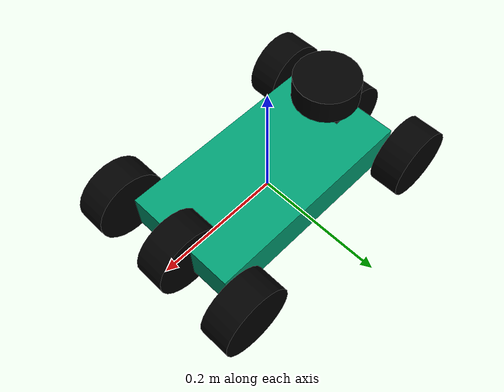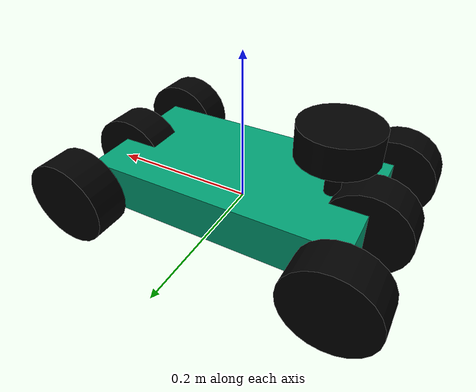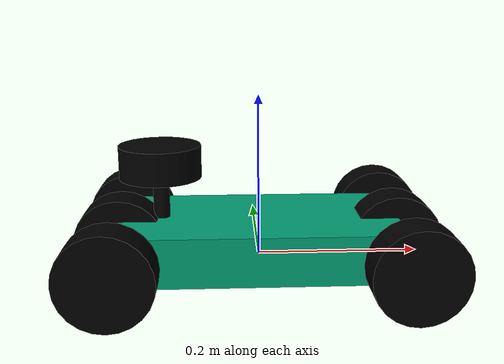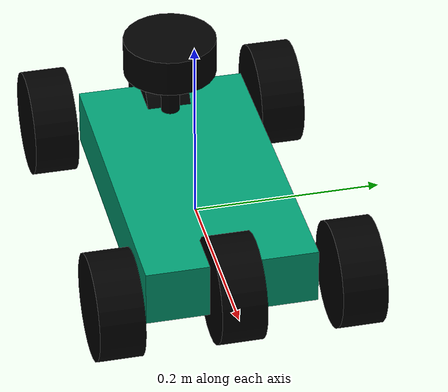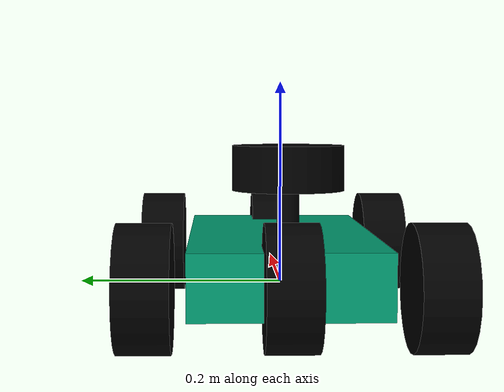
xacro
<?xml version="1.0"?>
<robot xmlns:xacro="http://www.ros.org/wiki/xacro"  name="robot">

    <xacro:arg name="use_ros2_control" default="true"/>
    <xacro:arg name="sim_mode" default="false"/>

    <xacro:include filename="Traxxes_2DOF.xacro" />
    <xacro:include filename="ros2_control_bicycle.xacro" />
    <xacro:include filename="lidar.xacro" />
    <xacro:if value="$(arg sim_mode)">
        <xacro:include filename="camera.xacro" />
        <xacro:include filename="imu.xacro"/>
    </xacro:if>

</robot>

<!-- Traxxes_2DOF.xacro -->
<robot xmlns:xacro="http://www.ros.org/wiki/xacro">

  <xacro:include filename="inertial_macros.xacro" />

  <!-- car geometry -->
  <xacro:arg name="wheel_diameter" default="0.112" />
  <xacro:property name="wheel_radius" value="${$(arg wheel_diameter)/2}" />
  <xacro:property name="wheel_width" value="0.047" />
  <xacro:property name="wheel_friction" value="2.0" />
  <xacro:property name="wheelbase" value="0.3429" />
  <xacro:property name="track_width" value="0.25" />
  <xacro:property name="chassis_width" value="0.18" />
  <xacro:property name="wheel_mass" value="0.1" />
  <xacro:property name="total_mass" value="3.0" />
  <xacro:property name="shock_travel" value="0.09" />
  <xacro:property name="chassis_height" value="0.06" />
  <xacro:property name="chassis_elevation" value="-0.01" />
  <xacro:property name="chassis_mass" value="${total_mass-4*wheel_mass}" />

  <!-- Steering params -->
  <xacro:property name="steering_velocity" value="0.2" />
  <xacro:property name="steering_upper_limit" value="0.6" />
  <xacro:property name="steering_lower_limit" value="-0.6" />
  <xacro:property name="steering_effort" value="1000.0" />

  <!-- Base link -->
  <link name="base_link">
   <visual>
      <geometry>
        <cylinder length="0.001" radius="0.001" />
      </geometry>
      <material name="black">
        <color rgba="0 0 0 1" />
      </material>
    </visual>
    <collision>
      <geometry>
        <cylinder length="0.01" radius="0.01" />
      </geometry>
    </collision>
    <xacro:inertial_cylinder mass="0.001" radius="0.001" length="0.001">
      <origin xyz="0 0 0" rpy="0 0 0" />
    </xacro:inertial_cylinder>
  </link>

  <link name="base_footprint">
    <visual>
      <geometry>
        <cylinder length="0.001" radius="0.001" />
      </geometry>
      <material name="black">
        <color rgba="0 0 0 1" />
      </material>
    </visual>
    <collision>
      <geometry>
        <cylinder length="0.01" radius="0.01" />
      </geometry>
    </collision>
    <xacro:inertial_cylinder mass="0.001" radius="0.001" length="0.001">
      <origin xyz="0 0 0" rpy="0 0 0" />
    </xacro:inertial_cylinder>
  </link>

  <joint name="base_footprint_joint" type="fixed">
    <parent link="base_link" />
    <child link="base_footprint" />
    <origin rpy="0 0 0" xyz="0 0 0" />
  </joint>

  <!-- Chassis -->
  <link name="chassis_link">
    <visual>
      <geometry>
        <box size="${wheelbase} ${chassis_width} ${chassis_height}" />
      </geometry>
    </visual>
    <collision>
      <geometry>
        <box size="${wheelbase} ${chassis_width} ${chassis_height}" />
      </geometry>
    </collision>
    <xacro:inertial_box mass="${chassis_mass}" x="${wheelbase}" y="${chassis_width}" z="${chassis_height}">
      <origin xyz="0 0 0" rpy="0 0 0" />
    </xacro:inertial_box>
  </link>

  <joint name="chassis_joint" type="fixed">
    <parent link="base_link" />
    <child link="chassis_link" />
    <origin rpy="0 0 0" xyz="0 0 ${chassis_height/2 + chassis_elevation}" />
  </joint>

  <!-- Back central wheel -->
  <link name="back_central_wheel">
    <visual>
      <geometry>
        <cylinder length="${wheel_width}" radius="${wheel_radius}" />
      </geometry>
      <material name="black">
        <color rgba="0 0 0 1" />
      </material>
    </visual>
    <collision>
      <geometry>
        <cylinder length="${wheel_width}" radius="${wheel_radius}" />
      </geometry>
    </collision>
    <xacro:inertial_cylinder mass="${wheel_mass}" radius="${wheel_radius}" length="${wheel_width}">
      <origin xyz="0 0 0" rpy="0 0 0" />
    </xacro:inertial_cylinder>
  </link>

  <joint name="back_central_wheel_joint" type="continuous">
    <parent link="chassis_link" />
    <child link="back_central_wheel" />
    <axis xyz="0 0 1" />
    <origin rpy="${-pi/2} 0 0" xyz="-${wheelbase/2} 0 0" />
  </joint>

  <!-- Rear Left wheel -->
  <link name="back_left_wheel">
    <visual>
      <geometry>
        <cylinder length="${wheel_width}" radius="${wheel_radius}" />
      </geometry>
      <material name="black">
        <color rgba="0 0 0 1" />
      </material>
    </visual>
    <collision>
      <geometry>
        <sphere radius="${wheel_radius}" />
      </geometry>
    </collision>
    <xacro:inertial_cylinder mass="${wheel_mass}" radius="${wheel_radius}" length="${wheel_width}">
      <origin xyz="0 0 0" rpy="0 0 0" />
    </xacro:inertial_cylinder>
  </link>

  <joint name="back_left_wheel_joint" type="fixed">
    <parent link="chassis_link" />
    <child link="back_left_wheel" />
    <origin rpy="${-pi/2} 0 0" xyz="-${wheelbase/2} ${track_width/2} 0" />
  </joint>

  <!-- Rear right wheel -->
  <link name="back_right_wheel">
    <visual>
      <geometry>
        <cylinder length="${wheel_width}" radius="${wheel_radius}" />
      </geometry>
      <material name="black">
        <color rgba="0 0 0 1" />
      </material>
    </visual>
    <collision>
      <geometry>
        <sphere radius="${wheel_radius}" />
      </geometry>
    </collision>
    <xacro:inertial_cylinder mass="${wheel_mass}" radius="${wheel_radius}" length="${wheel_width}">
      <origin xyz="0 0 0" rpy="0 0 0" />
    </xacro:inertial_cylinder>
  </link>

  <joint name="back_right_wheel_joint" type="fixed">
    <parent link="chassis_link" />
    <child link="back_right_wheel" />
    <origin rpy="${pi/2} 0 0" xyz="-${wheelbase/2} -${track_width/2} 0" />
  </joint>

  <!-- front central steer -->
  <link name="front_central_steer">
    <visual>
      <geometry>
        <cylinder length="0.01" radius="0.01" />
      </geometry>
      <material name="black">
        <color rgba="0 0 0 1" />
      </material>
    </visual>
    <collision>
      <geometry>
        <cylinder length="0.01" radius="0.01" />
      </geometry>
    </collision>
    <xacro:inertial_cylinder mass="0.1" radius="0.01" length="0.01">
      <origin xyz="0 0 0" rpy="0 0 0" />
    </xacro:inertial_cylinder>
  </link>

  <link name="front_central_wheel">
    <visual>
      <geometry>
        <cylinder length="${wheel_width}" radius="${wheel_radius}" />
      </geometry>
      <material name="black">
        <color rgba="0 0 0 1" />
      </material>
    </visual>
    <collision>
      <geometry>
        <cylinder length="${wheel_width}" radius="${wheel_radius}" />
      </geometry>
    </collision>
    <xacro:inertial_cylinder mass="${wheel_mass}" radius="${wheel_radius}" length="${wheel_width}">
      <origin xyz="0 0 0" rpy="0 0 0" />
    </xacro:inertial_cylinder>
  </link>

  <joint name="front_central_steer_joint" type="revolute">
    <parent link="chassis_link" />
    <child link="front_central_steer" />
    <axis xyz="0 0 1" />
    <origin rpy="0 0 0" xyz="${wheelbase/2} 0 0" />
    <limit lower="${steering_lower_limit}" upper="${steering_upper_limit}" effort="${steering_effort}" velocity="${steering_velocity}" />
    <dynamics damping="0.0" friction="0.2" />
  </joint>

  <joint name="front_central_wheel_joint" type="continuous">
    <parent link="front_central_steer" />
    <child link="front_central_wheel" />
    <axis xyz="0 0 1" />
    <origin rpy="${-pi/2} 0 0" xyz="0 0 0" />
  </joint>

  <!-- front_left_ -->

  <link name="front_left_wheel">
    <visual>
      <geometry>
        <cylinder length="${wheel_width}" radius="${wheel_radius}" />
      </geometry>
      <material name="black">
        <color rgba="0 0 0 1" />
      </material>
    </visual>
    <collision>
      <geometry>
        <sphere radius="${wheel_radius}" />
      </geometry>
    </collision>
    <xacro:inertial_cylinder mass="${wheel_mass}" radius="${wheel_radius}" length="${wheel_width}">
      <origin xyz="0 0 0" rpy="0 0 0" />
    </xacro:inertial_cylinder>
  </link>

  <joint name="front_left_wheel_joint" type="fixed">
    <parent link="chassis_link" />
    <child link="front_left_wheel" />
    <origin rpy="${-pi/2} 0 0" xyz="${wheelbase/2} ${track_width/2} 0" />
  </joint>

  <!-- front_right -->
  <link name="front_right_wheel">
    <visual>
      <geometry>
        <cylinder length="${wheel_width}" radius="${wheel_radius}" />
      </geometry>
      <material name="black">
        <color rgba="0 0 0 1" />
      </material>
    </visual>
    <collision>
      <geometry>
        <sphere radius="${wheel_radius}" />
      </geometry>
    </collision>
    <xacro:inertial_cylinder mass="${wheel_mass}" radius="${wheel_radius}" length="${wheel_width}">
      <origin xyz="0 0 0" rpy="0 0 0" />
    </xacro:inertial_cylinder>
  </link>

  <joint name="front_right_wheel_joint" type="fixed">
    <parent link="chassis_link" />
    <child link="front_right_wheel" />
    <origin rpy="${-pi/2} 0 0" xyz="${wheelbase/2} -${track_width/2} 0" />
  </joint>

  <!-- Gazebo interface -->
  <gazebo reference="front_central_wheel">
    <mu1 value="${wheel_friction}" />
    <mu2 value="${wheel_friction}" />
    <material>Gazebo/DarkGrey</material>
  </gazebo>
  <gazebo reference="back_central_wheel">
    <mu1 value="${wheel_friction}" />
    <mu2 value="${wheel_friction}" />
    <material>Gazebo/DarkGrey</material>
  </gazebo>

  <gazebo reference="back_left_wheel">
    <mu1 value="0.0" />
    <mu2 value="0.0" />
    <material>Gazebo/DarkGrey</material>
  </gazebo>
  <gazebo reference="back_right_wheel">
    <mu1 value="0.0" />
    <mu2 value="0.0" />
    <material>Gazebo/DarkGrey</material>
  </gazebo>
  <gazebo reference="front_left_wheel">
    <mu1 value="0.0" />
    <mu2 value="0.0" />
    <material>Gazebo/DarkGrey</material>
  </gazebo>
  <gazebo reference="front_right_wheel">
    <mu1 value="0.0" />
    <mu2 value="0.0" />
    <material>Gazebo/DarkGrey</material>
  </gazebo>

</robot>

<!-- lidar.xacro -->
<robot xmlns:xacro="http://www.ros.org/wiki/xacro">

    <joint name="laser_joint" type="fixed">
        <parent link="chassis_link" />
        <child link="laser_frame" />
        <origin xyz="-0.12 0 0.10" rpy="0 0 0" />
    </joint>

    <link name="laser_frame">
        <visual>
            <geometry>
                <cylinder radius="0.05" length="0.04" />
            </geometry>
            <material name="black" />
        </visual>
        <visual>
            <origin xyz="0 0 -0.05" />
            <geometry>
                <cylinder radius="0.01" length="0.1" />
            </geometry>
            <material name="black" />
        </visual>
        <collision>
            <geometry>
                <cylinder radius="0.05" length="0.04" />
            </geometry>
        </collision>
        <xacro:inertial_cylinder mass="0.1" length="0.04" radius="0.05">
            <origin xyz="0 0 0" rpy="0 0 0" />
        </xacro:inertial_cylinder>
    </link>

    <gazebo reference="laser_frame">
        <material>Gazebo/Black</material>
        <sensor name="laser" type="ray">
            <pose> 0 0 0 0 0 0 </pose>
            <visualize>false</visualize>
            <update_rate>10</update_rate>
            <ray>
                <scan>
                    <horizontal>
                        <samples>360</samples>
                        <min_angle>-3.14</min_angle>
                        <max_angle>3.14</max_angle>
                    </horizontal>
                </scan>
                <range>
                    <min>0.3</min>
                    <max>10.0</max>
                </range>
            </ray>
            <plugin name="laser_controller" filename="libgazebo_ros_ray_sensor.so">
                <ros>
                    <argument>~/out:=scan</argument>
                </ros>
                <output_type>sensor_msgs/LaserScan</output_type>
                <frame_name>laser_frame</frame_name>
            </plugin>
        </sensor>
    </gazebo>

</robot>
